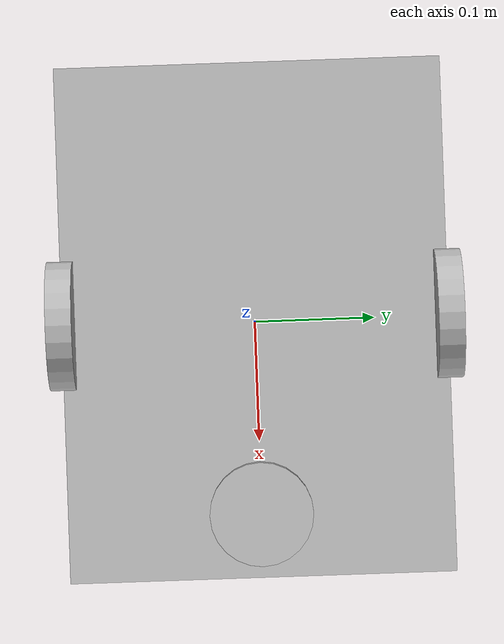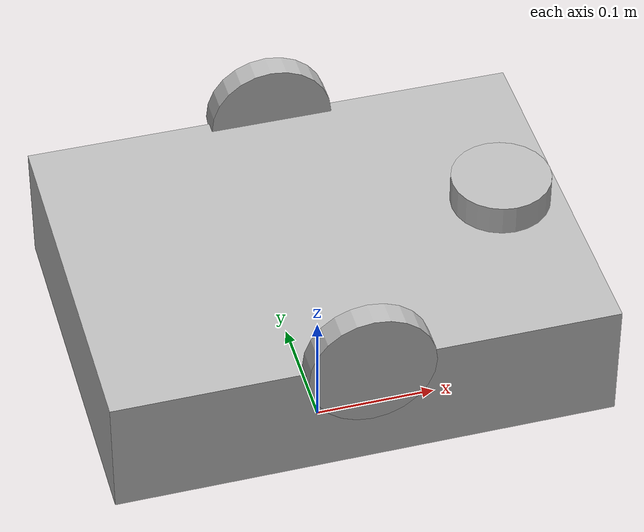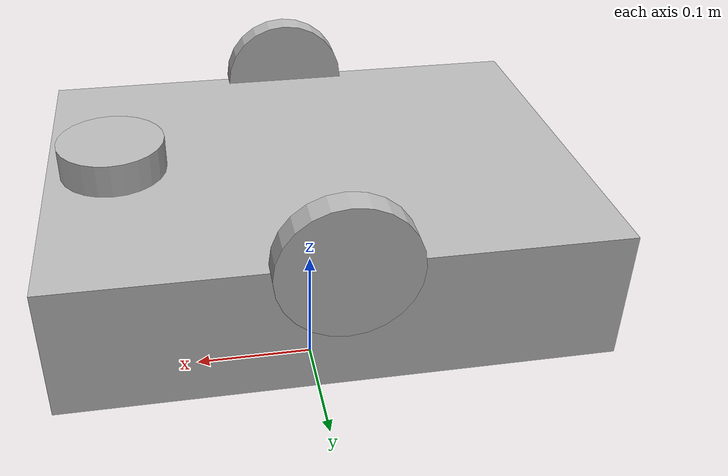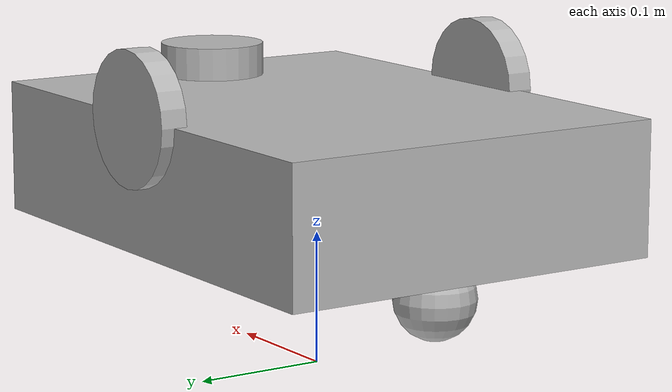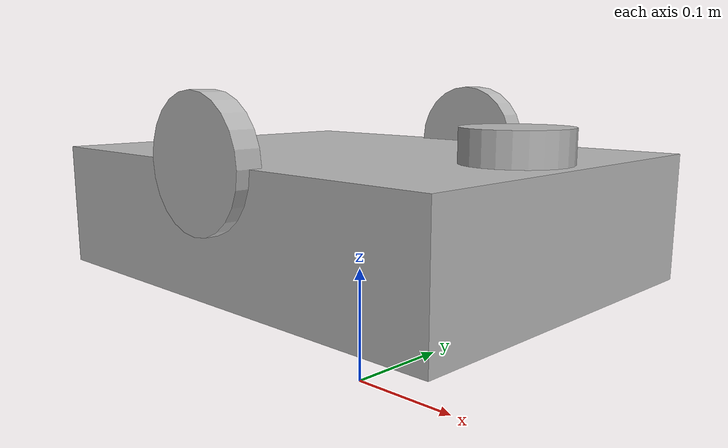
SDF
<?xml version="1.0" ?>
<sdf version="1.8">
  <model name="amr_robot">
    <pose>0 0 0.15 0 0 0</pose>

    <link name="base_link">
      <inertial><mass>10.0</mass><inertia><ixx>0.1</ixx><iyy>0.1</iyy><izz>0.1</izz></inertia></inertial>
      <collision name="base_collision"><geometry><box><size>0.4 0.3 0.1</size></box></geometry></collision>
      <visual name="base_visual"><geometry><box><size>0.4 0.3 0.1</size></box></geometry></visual>
    </link>

    <link name="left_wheel">
      <pose>0 0.15 0.05 0 0 0</pose>
      <collision name="left_collision">
        <pose>0 0 0 1.5708 0 0</pose>
        <geometry><cylinder><radius>0.05</radius><length>0.02</length></cylinder></geometry>
        <surface><friction><ode><mu>2.0</mu><mu2>2.0</mu2></ode></friction></surface>
      </collision>
      <visual name="left_visual"><pose>0 0 0 1.5708 0 0</pose><geometry><cylinder><radius>0.05</radius><length>0.02</length></cylinder></geometry></visual>
    </link>

    <link name="right_wheel">
      <pose>0 -0.15 0.05 0 0 0</pose>
      <collision name="right_collision">
        <pose>0 0 0 1.5708 0 0</pose>
        <geometry><cylinder><radius>0.05</radius><length>0.02</length></cylinder></geometry>
        <surface><friction><ode><mu>2.0</mu><mu2>2.0</mu2></ode></friction></surface>
      </collision>
      <visual name="right_visual"><pose>0 0 0 1.5708 0 0</pose><geometry><cylinder><radius>0.05</radius><length>0.02</length></cylinder></geometry></visual>
    </link>

    <joint name="left_wheel_joint" type="revolute"><parent>base_link</parent><child>left_wheel</child><axis><xyz>0 0 1</xyz></axis></joint>
    <joint name="right_wheel_joint" type="revolute"><parent>base_link</parent><child>right_wheel</child><axis><xyz>0 0 1</xyz></axis></joint>

    <link name="rear_caster">
      <pose>-0.15 0 -0.07 0 0 0</pose>
      <collision name="caster_collision"><geometry><sphere><radius>0.03</radius></sphere></geometry></collision>
      <visual name="caster_visual"><geometry><sphere><radius>0.03</radius></sphere></geometry></visual>
    </link>
    <joint name="caster_joint" type="ball"><parent>base_link</parent><child>rear_caster</child></joint>

    <link name="lidar_link">
      <pose>0.15 0 0.05 0 0 0</pose>
      <visual name="lidar_visual"><geometry><cylinder><radius>0.04</radius><length>0.05</length></cylinder></geometry></visual>
      <sensor name="lidar_sensor" type="gpu_lidar">
        <topic>/scan</topic>
        <update_rate>10</update_rate>
        <lidar><scan><horizontal><samples>720</samples><min_angle>-3.14</min_angle><max_angle>3.14</max_angle></horizontal></scan><range><min>0.1</min><max>10.0</max></range></lidar>
      </sensor>
    </link>
    <joint name="lidar_joint" type="fixed"><parent>base_link</parent><child>lidar_link</child></joint>

    <plugin filename="libignition-gazebo-diff-drive-system.so" name="ignition::gazebo::systems::DiffDrive">
      <left_joint>left_wheel_joint</left_joint><right_joint>right_wheel_joint</right_joint>
      <wheel_separation>0.30</wheel_separation><wheel_radius>0.05</wheel_radius><topic>/cmd_vel</topic>
    </plugin>
  </model>
</sdf>
